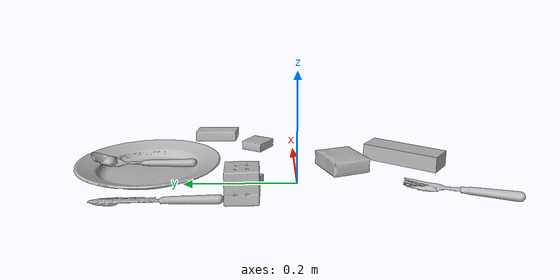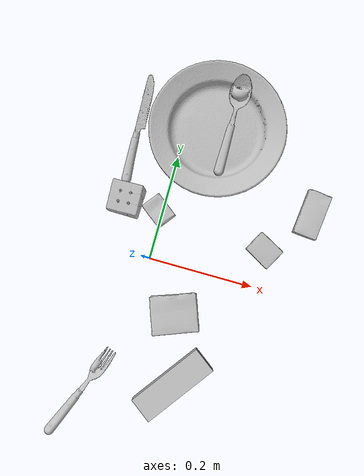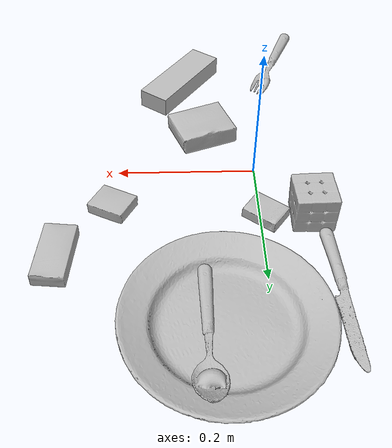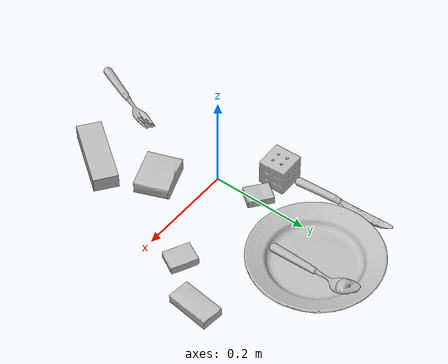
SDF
<sdf version="1.4">
  <world name="default">
    <light name="light1" type="point">
      <pose>0 0 1 0 0 0</pose>
      <diffuse>3 3 3 1</diffuse>
      <specular>3 3 3 1</specular>
    </light>
    <light name="light2" type="point">
      <pose>0 0.5 2 0 0 0</pose>
      <diffuse>1 1 1 1</diffuse>
      <specular>1 1 1 1</specular>
    </light>
    <light name="light3" type="point">
      <pose>0 0.5 2 0 0 0</pose>
      <diffuse>3 3 3 1</diffuse>
      <specular>3 3 3 1</specular>
    </light>
    <scene>
      <ambient>0.7 0.7 0.7</ambient>
    </scene>
    <model name="box11">
      <link name="link_box11">
        <collision name="default">
          <geometry>
            <mesh>
              <uri>model://pudding_box/collision_meshes/collision.obj</uri>
              <scale>0.5 0.5 0.5</scale>
            </mesh>
          </geometry>
          <surface>
            <friction>
              <ode>
                <mu>0.5</mu>
                <mu2>0.5</mu2>
              </ode>
            </friction>
          <contact>
        <ode>
            <max_vel>0</max_vel>
            <min_depth>0.0001</min_depth>
            <kp>1e8</kp>
        </ode>
    </contact></surface>
        </collision>
        <visual name="default">
          <geometry>
            <mesh>
              <uri>model://pudding_box/visual_meshes/visual.dae</uri>
              <scale>0.5 0.5 0.5</scale>
            </mesh>
          </geometry>
        </visual>
        <inertial>
          <mass>0.03786866366863251</mass>
          <pose>0.00024474109522998333 0.00040339428232982755 -0.0002594413817860186 0.005213102272185547 -0.006603797326323335 0.020079825161634604</pose>
          <inertia>
            <ixx>1.0702144e-05</ixx>
            <iyy>7.2004777e-06</iyy>
            <izz>1.580451e-05</izz>
            <ixy>0</ixy>
            <ixz>0</ixz>
            <iyz>0</iyz>
          </inertia>
        </inertial>
      </link>
      <pose>0.2040175050497055 0.0724053829908371 0.009862903505563736 0.022348734539013874 -0.011391583176831269 1.0722118991356084</pose>
    </model>
    <model name="box12">
      <link name="link_box12">
        <collision name="default">
          <geometry>
            <mesh>
              <uri>model://gelatin_box/collision_meshes/collision.obj</uri>
              <scale>1.0 1.0 1.0</scale>
            </mesh>
          </geometry>
          <surface>
            <friction>
              <ode>
                <mu>0.5</mu>
                <mu2>0.5</mu2>
              </ode>
            </friction>
          <contact>
        <ode>
            <max_vel>0</max_vel>
            <min_depth>0.0001</min_depth>
            <kp>1e8</kp>
        </ode>
    </contact></surface>
        </collision>
        <visual name="default">
          <geometry>
            <mesh>
              <uri>model://gelatin_box/visual_meshes/visual.dae</uri>
              <scale>1.0 1.0 1.0</scale>
            </mesh>
          </geometry>
        </visual>
        <inertial>
          <mass>0.12588495016098022</mass>
          <pose>0.0004319618456065655 0.00011156871914863586 -0.0003640321083366871 -0.0010503723379331838 -0.004755819617810625 0.016440561335826234</pose>
          <inertia>
            <ixx>8.886451e-05</ixx>
            <iyy>6.3475454e-05</iyy>
            <izz>0.00013527159</izz>
            <ixy>0</ixy>
            <ixz>0</ixz>
            <iyz>0</iyz>
          </inertia>
        </inertial>
      </link>
      <pose>0.07388585805892944 -0.08733399212360382 0.015168312005698681 0.0055968517501195185 -0.007303868183235556 1.9185234676185683</pose>
    </model>
    <model name="box13">
      <link name="link_box13">
        <collision name="default">
          <geometry>
            <mesh>
              <uri>model://rubiks_cube/collision_meshes/collision.obj</uri>
              <scale>1.0 1.0 1.0</scale>
            </mesh>
          </geometry>
          <surface>
            <friction>
              <ode>
                <mu>0.5</mu>
                <mu2>0.5</mu2>
              </ode>
            </friction>
          <contact>
        <ode>
            <max_vel>0</max_vel>
            <min_depth>0.0001</min_depth>
            <kp>1e8</kp>
        </ode>
    </contact></surface>
        </collision>
        <visual name="default">
          <geometry>
            <mesh>
              <uri>model://rubiks_cube/visual_meshes/visual.dae</uri>
              <scale>1.0 1.0 1.0</scale>
            </mesh>
          </geometry>
        </visual>
        <inertial>
          <mass>0.24923686683177948</mass>
          <pose>2.6721039830590598e-05 5.256966323941015e-05 -7.264316082000732e-06 -0.05467307197132049 -0.09814178001312306 -0.03445579173896148</pose>
          <inertia>
            <ixx>0.00013772011</ixx>
            <iyy>0.00013707785</iyy>
            <izz>0.00013886133</izz>
            <ixy>0</ixy>
            <ixz>0</ixz>
            <iyz>0</iyz>
          </inertia>
        </inertial>
      </link>
      <pose>-0.07027676701545715 0.09424213320016861 0.028679007664322853 -1.5938913972934469e-06 4.93326445777959e-07 1.5914666803584028</pose>
    </model>
    <model name="box21">
      <link name="link_box21">
        <collision name="default">
          <geometry>
            <mesh>
              <uri>model://cracker_box/collision_meshes/collision.obj</uri>
              <scale>0.25 0.25 0.25</scale>
            </mesh>
          </geometry>
          <surface>
            <friction>
              <ode>
                <mu>0.5</mu>
                <mu2>0.5</mu2>
              </ode>
            </friction>
          <contact>
        <ode>
            <max_vel>0</max_vel>
            <min_depth>0.0001</min_depth>
            <kp>1e8</kp>
        </ode>
    </contact></surface>
        </collision>
        <visual name="default">
          <geometry>
            <mesh>
              <uri>model://cracker_box/visual_meshes/visual.dae</uri>
              <scale>0.25 0.25 0.25</scale>
            </mesh>
          </geometry>
        </visual>
        <inertial>
          <mass>0.030397580936551094</mass>
          <pose>0.00023660376609768718 6.358562677633017e-05 -0.0004257384280208498 -0.0003162076301819785 -0.011106490531717715 0.002546795235004545</pose>
          <inertia>
            <ixx>4.8323677e-06</ixx>
            <iyy>7.979188e-06</iyy>
            <izz>1.1387034e-05</izz>
            <ixy>0</ixy>
            <ixz>0</ixz>
            <iyz>0</iyz>
          </inertia>
        </inertial>
      </link>
      <pose>-0.007534343283623457 0.09108345210552216 0.00909603014588356 -0.014049819649193055 -0.005016565216632913 -0.6547737829124782</pose>
    </model>
    <model name="box22">
      <link name="link_box22">
        <collision name="default">
          <geometry>
            <mesh>
              <uri>model://jenga/collision_meshes/collision.obj</uri>
              <scale>1.0 1.0 1.0</scale>
            </mesh>
          </geometry>
          <surface>
            <friction>
              <ode>
                <mu>0.5</mu>
                <mu2>0.5</mu2>
              </ode>
            </friction>
          <contact>
        <ode>
            <max_vel>0</max_vel>
            <min_depth>0.0001</min_depth>
            <kp>1e8</kp>
        </ode>
    </contact></surface>
        </collision>
        <visual name="default">
          <geometry>
            <mesh>
              <uri>model://jenga/visual_meshes/visual.dae</uri>
              <scale>1.0 1.0 1.0</scale>
            </mesh>
          </geometry>
        </visual>
        <inertial>
          <mass>0.22754427790641785</mass>
          <pose>-2.502855807051674e-07 -0.00010250010382151231 -4.0923401684267446e-05 0.0 -7.34215461761844e-07 0.0</pose>
          <inertia>
            <ixx>6.2967025e-05</ixx>
            <iyy>0.00042666285</iyy>
            <izz>0.00045549884</izz>
            <ixy>0</ixy>
            <ixz>0</ixz>
            <iyz>0</iyz>
          </inertia>
        </inertial>
      </link>
      <pose>0.10619813203811646 -0.21248166263103485 0.01499999687075615 -1.6863788540648567e-09 1.207271513594687e-09 0.9373267452345496</pose>
    </model>
    <model name="box23">
      <link name="link_box23">
        <collision name="default">
          <geometry>
            <mesh>
              <uri>model://sugar_box/collision_meshes/collision.obj</uri>
              <scale>0.5 0.5 0.5</scale>
            </mesh>
          </geometry>
          <surface>
            <friction>
              <ode>
                <mu>0.5</mu>
                <mu2>0.5</mu2>
              </ode>
            </friction>
          <contact>
        <ode>
            <max_vel>0</max_vel>
            <min_depth>0.0001</min_depth>
            <kp>1e8</kp>
        </ode>
    </contact></surface>
        </collision>
        <visual name="default">
          <geometry>
            <mesh>
              <uri>model://sugar_box/visual_meshes/visual.dae</uri>
              <scale>0.5 0.5 0.5</scale>
            </mesh>
          </geometry>
        </visual>
        <inertial>
          <mass>0.07313712686300278</mass>
          <pose>0.0005171863595023751 1.924554817378521e-05 -0.00018182402709499002 -0.0004046264167799433 0.0010506636386831275 0.0026153785560066108</pose>
          <inertia>
            <ixx>1.5234412e-05</ixx>
            <iyy>4.924075e-05</iyy>
            <izz>5.894705e-05</izz>
            <ixy>0</ixy>
            <ixz>0</ixz>
            <iyz>0</iyz>
          </inertia>
        </inertial>
      </link>
      <pose>0.2729112207889557 0.16222776472568512 0.011399303562939167 0.0007752286638180341 -0.023432436472412516 -1.6797362593329375</pose>
    </model>
    <model name="plate1">
      <link name="link_plate1">
        <collision name="default">
          <geometry>
            <mesh>
              <uri>model://plate/collision_meshes/collision.obj</uri>
              <scale>1.0 1.0 1.0</scale>
            </mesh>
          </geometry>
          <surface>
            <friction>
              <ode>
                <mu>0.5</mu>
                <mu2>0.5</mu2>
              </ode>
            </friction>
          <contact>
        <ode>
            <max_vel>0</max_vel>
            <min_depth>0.0001</min_depth>
            <kp>1e8</kp>
        </ode>
    </contact></surface>
        </collision>
        <visual name="default">
          <geometry>
            <mesh>
              <uri>model://plate/visual_meshes/visual.dae</uri>
              <scale>1.0 1.0 1.0</scale>
            </mesh>
          </geometry>
        </visual>
        <inertial>
          <mass>0.2069685012102127</mass>
          <pose>-0.0006044612964615226 0.0002782598603516817 -0.0010561986127868295 0.0022188143427174073 -0.003225461822968263 0.4526007532235607</pose>
          <inertia>
            <ixx>0.0009682027</ixx>
            <iyy>0.0009589421</iyy>
            <izz>0.0018936595</izz>
            <ixy>0</ixy>
            <ixz>0</ixz>
            <iyz>0</iyz>
          </inertia>
        </inertial>
      </link>
      <pose>0.05728158354759216 0.26974791288375854 0.013733011670410633 1.955241542631116e-08 -2.6472598936572905e-07 -0.7976084826322567</pose>
    </model>
    <model name="silverware1">
      <link name="link_silverware1">
        <collision name="default">
          <geometry>
            <mesh>
              <uri>model://knife/collision_meshes/collision.obj</uri>
              <scale>1.0 1.0 1.0</scale>
            </mesh>
          </geometry>
          <surface>
            <friction>
              <ode>
                <mu>0.5</mu>
                <mu2>0.5</mu2>
              </ode>
            </friction>
          <contact>
        <ode>
            <max_vel>0</max_vel>
            <min_depth>0.0001</min_depth>
            <kp>1e8</kp>
        </ode>
    </contact></surface>
        </collision>
        <visual name="default">
          <geometry>
            <mesh>
              <uri>model://knife/visual_meshes/visual.dae</uri>
              <scale>1.0 1.0 1.0</scale>
            </mesh>
          </geometry>
        </visual>
        <inertial>
          <mass>0.01404397189617157</mass>
          <pose>-0.02378525771200657 0.0015275126788765192 5.0620223191799596e-05 0.07306830572090188 0.017248424252748085 -0.00740981553779352</pose>
          <inertia>
            <ixx>3.9862488e-07</ixx>
            <iyy>5.3954667e-05</iyy>
            <izz>5.408303e-05</izz>
            <ixy>0</ixy>
            <ixz>0</ixz>
            <iyz>0</iyz>
          </inertia>
        </inertial>
      </link>
      <pose>-0.0863422304391861 0.23082205653190613 0.007946518249809742 -0.0239076887610047 -0.014542508908234641 1.6051819062770107</pose>
    </model>
    <model name="silverware2">
      <link name="link_silverware2">
        <collision name="default">
          <geometry>
            <mesh>
              <uri>model://fork/collision_meshes/collision.obj</uri>
              <scale>1.0 1.0 1.0</scale>
            </mesh>
          </geometry>
          <surface>
            <friction>
              <ode>
                <mu>0.5</mu>
                <mu2>0.5</mu2>
              </ode>
            </friction>
          <contact>
        <ode>
            <max_vel>0</max_vel>
            <min_depth>0.0001</min_depth>
            <kp>1e8</kp>
        </ode>
    </contact></surface>
        </collision>
        <visual name="default">
          <geometry>
            <mesh>
              <uri>model://fork/visual_meshes/visual.dae</uri>
              <scale>1.0 1.0 1.0</scale>
            </mesh>
          </geometry>
        </visual>
        <inertial>
          <mass>0.012992284260690212</mass>
          <pose>-0.029570037499070168 0.0004658822435885668 0.00032188609475269914 -0.013552170713958372 -0.010977837352032947 0.014453895109592321</pose>
          <inertia>
            <ixx>4.5545306e-07</ixx>
            <iyy>3.3919117e-05</iyy>
            <izz>3.4122822e-05</izz>
            <ixy>0</ixy>
            <ixz>0</ixz>
            <iyz>0</iyz>
          </inertia>
        </inertial>
      </link>
      <pose>-0.05682826787233353 -0.27466097474098206 0.005755227990448475 -0.18987018914438597 0.024038934479874843 1.1685465569622813</pose>
    </model>
    <model name="silverware3">
      <link name="link_silverware3">
        <collision name="default">
          <geometry>
            <mesh>
              <uri>model://spoon/collision_meshes/collision.obj</uri>
              <scale>1.0 1.0 1.0</scale>
            </mesh>
          </geometry>
          <surface>
            <friction>
              <ode>
                <mu>0.5</mu>
                <mu2>0.5</mu2>
              </ode>
            </friction>
          <contact>
        <ode>
            <max_vel>0</max_vel>
            <min_depth>0.0001</min_depth>
            <kp>1e8</kp>
        </ode>
    </contact></surface>
        </collision>
        <visual name="default">
          <geometry>
            <mesh>
              <uri>model://spoon/visual_meshes/visual.dae</uri>
              <scale>1.0 1.0 1.0</scale>
            </mesh>
          </geometry>
        </visual>
        <inertial>
          <mass>0.01562128309160471</mass>
          <pose>-0.0055263228714466095 -0.0016034174477681518 -0.0007271653157658875 0.03521671072610287 -0.03906584128735088 0.006150609582760137</pose>
          <inertia>
            <ixx>8.688809e-07</ixx>
            <iyy>5.9438455e-05</iyy>
            <izz>5.986695e-05</izz>
            <ixy>0</ixy>
            <ixz>0</ixz>
            <iyz>0</iyz>
          </inertia>
        </inertial>
      </link>
      <pose>0.0786474198102951 0.28413110971450806 0.015574917197227478 -0.06443547099122554 -0.014947722820306809 1.5699885605301416</pose>
    </model>
  <physics type="ode">
      <max_contacts>50</max_contacts>
      <ode>
        <solver>
          <type>quick</type>
          <iters>75</iters>
        </solver>
        <constraints>
          <contact_max_correcting_vel>0</contact_max_correcting_vel>
          <contact_surface_layer>0</contact_surface_layer>
        </constraints>
      </ode>
    </physics></world>
</sdf>
